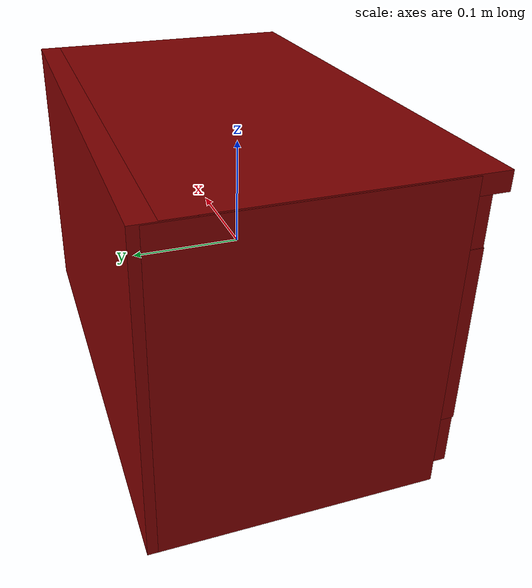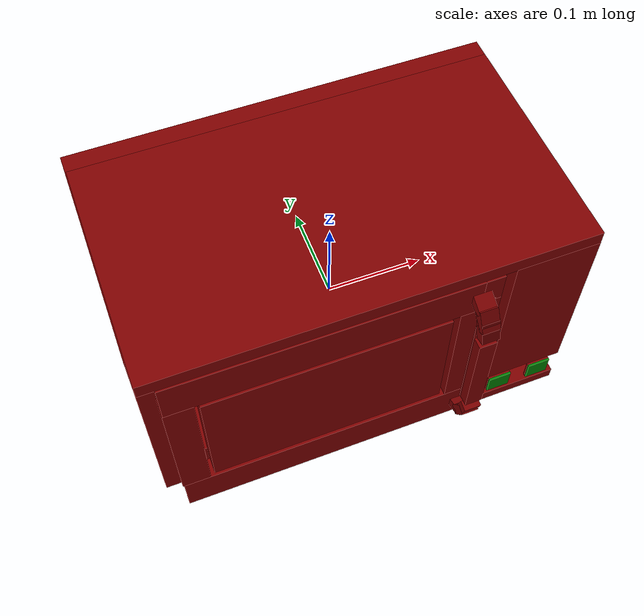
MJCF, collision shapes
<mujoco model="model">
  <compiler angle="radian"/>
  <asset>
    <mesh file="visuals/door.obj" name="door_vis"/>
    <mesh file="visuals/door_Clear.obj" name="door_Clear_vis"/>
    <mesh file="visuals/Body001.obj" name="Body001_vis"/>
    <mesh file="visuals/Button001.obj" name="Button001_vis"/>
    <mesh file="visuals/Button002.obj" name="Button002_vis"/>
    <mesh file="visuals/Disc001.obj" name="Disc001_vis"/>
    <texture file="visuals/T_BC001.png" name="Body001_material" type="2d"/>
    <material name="Body001_material" rgba="1 1 1 1.0" texture="Body001_material" shininess="0.4472135901451111" specular="0.3103448502657381"/>
    <texture file="visuals/T_BC001.png" name="door_material" type="2d"/>
    <material name="door_material" rgba="1 1 1 1.0" texture="door_material" shininess="0.4472135901451111" specular="0.3103448502657381"/>
    <texture file="visuals/T_BC001.png" name="door_Clear_material" type="2d"/>
    <material name="door_Clear_material" rgba="1 1 1 0.8187407851219177" texture="door_Clear_material" shininess="0.5" specular="0.3103448502657381"/>
    <texture file="visuals/T_BC001.png" name="Button001_material" type="2d"/>
    <material name="Button001_material" rgba="1 1 1 1.0" texture="Button001_material" shininess="0.4472135901451111" specular="0.3103448502657381"/>
    <texture file="visuals/T_BC001.png" name="Button002_material" type="2d"/>
    <material name="Button002_material" rgba="1 1 1 1.0" texture="Button002_material" shininess="0.4472135901451111" specular="0.3103448502657381"/>
    <texture file="visuals/T_BC001.png" name="Disc001_material" type="2d"/>
    <material name="Disc001_material" rgba="1 1 1 1.0" texture="Disc001_material" shininess="0.4472135901451111" specular="0.3103448502657381"/>
  </asset>
  <default>
    <default class="visual">
      <geom conaffinity="0" contype="0" group="1" type="mesh"/>
    </default>
    <default class="collision">
      <geom group="0" rgba="0.5 0 0 0.5"/>
    </default>
    <default class="spawn">
      <geom group="0" rgba="1 1 1 0.5" contype="0" conaffinity="0"/>
      <site group="0" rgba="1 1 1 0.5"/>
    </default>
    <default class="region">
      <geom group="1" conaffinity="0" contype="0" rgba="0 1 0 0"/>
    </default>
  </default>
  <worldbody>
    <body>
      <body name="object">
        <geom class="collision" type="box" pos="0.149699 -0.119768 -0.093345" size="0.012576025910675526 0.0010291410144418478 0.011468940414488316" quat="1.0 0.0 0.0 0.0" name="start_button" rgba="0.0 0.5 0 0.5"/>
        <geom class="collision" type="box" pos="0.196370 -0.119768 -0.093330" size="0.012238393537700176 0.0009990474209189415 0.011656091548502445" quat="1.0 0.0 0.0 0.0" name="stop_button" rgba="0.0 0.5 0 0.5"/>
        <geom class="collision" type="box" pos="-0.046128 0.008792 -0.076449" size="0.08991196751594543 0.08991196751594543 0.003375768195837736" quat="1.0 0.0 0.0 0.0" name="tray" rgba="0 1 0 0.5"/>
        <geom mesh="Body001_vis" type="mesh" solimp="0.998 0.998 0.001" solref="0.001 1" density="100" friction="0.95 0.3 0.1" class="visual" material="Body001_material"/>
        <geom class="collision" type="box" pos="-0.206746 0.021166 0.006894" size="0.011933187022805214 0.11463572084903717 0.1347111165523529" quat="1.0 0.0 0.0 0.0"/>
        <geom class="collision" type="box" pos="-0.001776 0.019319 -0.133513" size="0.19735786318778992 0.11648261547088623 0.008951622992753983" quat="1.0 0.0 0.0 0.0"/>
        <geom class="collision" type="box" pos="0.210842 0.009028 -0.000708" size="0.007836669683456421 0.11559520661830902 0.12706592679023743" quat="1.0 0.0 0.0 0.0"/>
        <geom class="collision" type="box" pos="-0.000000 0.122263 0.007345" size="0.2186790555715561 0.021765995770692825 0.13511958718299866" quat="1.0 0.0 0.0 0.0"/>
        <geom class="collision" type="box" pos="0.000508 0.002930 0.134411" size="0.21817070245742798 0.12169364094734192 0.008054380305111408" quat="1.0 0.0 0.0 0.0"/>
        <geom class="collision" type="box" pos="0.115142 0.018612 -0.000307" size="0.014630835503339767 0.11026276648044586 0.1269126832485199" quat="1.0 0.0 0.0 0.0"/>
        <geom class="collision" type="box" pos="0.176526 -0.097944 -0.120465" size="0.04215288162231445 0.02107841894030571 0.006854276172816753" quat="1.0 0.0 0.0 0.0"/>
        <geom class="collision" type="box" pos="0.176526 0.003159 0.025569" size="0.04215288162231445 0.12218225002288818 0.10169417411088943" quat="1.0 0.0 0.0 0.0"/>
        <geom class="collision" type="box" pos="-0.001776 0.026455 -0.111004" size="0.19735786318778992 0.10934680700302124 0.020319350063800812" quat="1.0 0.0 0.0 0.0"/>
        <geom class="collision" type="box" pos="-0.040712 0.015904 0.117623" size="0.15461312234401703 0.10871889442205429 0.016914626583456993" quat="1.0 0.0 0.0 0.0"/>
        <body name="door">
          <joint axis="0.0 0.0 1.0" pos="-0.207611 -0.107606 -0.011140" limited="true" name="microjoint" range="-1.5707963267948966 0.0" type="hinge" damping="1" frictionloss="1" armature=".01" stiffness="0.05"/>
          <geom mesh="door_vis" type="mesh" solimp="0.998 0.998 0.001" solref="0.001 1" density="100" friction="0.95 0.3 0.1" class="visual" material="door_material"/>
          <geom class="collision" type="box" pos="-0.048388 -0.108384 0.098872" size="0.153357595205307 0.00980498269200325 0.023440396413207054" quat="1.0 0.0 0.0 0.0"/>
          <geom class="collision" type="box" pos="-0.048271 -0.108384 -0.105497" size="0.1527440845966339 0.00980498269200325 0.023440394550561905" quat="1.0 0.0 0.0 0.0"/>
          <geom class="collision" type="box" pos="0.094722 -0.108384 -0.002997" size="0.009746131487190723 0.00980498269200325 0.07887928187847137" quat="1.0 0.0 0.0 0.0"/>
          <geom class="collision" type="box" pos="-0.187877 -0.108384 -0.003118" size="0.014712302945554256 0.00980498269200325 0.07875912636518478" quat="1.0 0.0 0.0 0.0"/>
          <geom class="collision" type="box" pos="0.103261 -0.139593 -0.004311" size="0.009254427626729012 0.005718340165913105 0.05897502973675728" quat="1.0 0.0 0.0 0.0" name="door_handle"/>
          <geom class="collision" type="box" pos="0.102820 -0.121548 0.097984" size="0.009255077689886093 0.01179773174226284 0.005450263619422913" quat="5.967824989738801e-08 -7.539676261103523e-08 0.9728875160217285 0.23127888143062592"/>
          <geom class="collision" type="box" pos="0.114732 -0.108384 -0.012180" size="0.009746699593961239 0.00980498269200325 0.10331225395202637" quat="1.0 0.0 0.0 0.0"/>
          <geom class="collision" type="box" pos="0.114732 -0.108384 0.105070" size="0.009746729396283627 0.00980498269200325 0.017172861844301224" quat="1.0 0.0 0.0 0.0"/>
          <geom class="collision" type="box" pos="0.115460 -0.108384 -0.121672" size="0.010475290939211845 0.00980498269200325 0.006566065363585949" quat="1.0 0.0 0.0 0.0"/>
          <geom class="collision" type="box" pos="0.102820 -0.134842 -0.092947" size="0.009255077689886093 0.01179773174226284 0.005450263153761625" quat="-2.1250021120522433e-07 5.153807478563976e-07 -0.5028786063194275 -0.864357054233551"/>
          <geom class="collision" type="box" pos="0.102820 -0.121548 -0.103817" size="0.009255077689886093 0.01179773174226284 0.005450263619422913" quat="1.756554581788805e-07 1.0296741947968258e-07 -0.9728875160217285 0.23127888143062592"/>
          <geom class="collision" type="box" pos="0.102820 -0.134842 0.087114" size="0.009255077689886093 0.01179773174226284 0.005450263153761625" quat="-1.9651568550216325e-07 -4.879065613749844e-07 0.5028783679008484 -0.8643571734428406"/>
          <geom class="collision" type="box" pos="0.102820 -0.139441 0.075492" size="0.009255077689886093 0.01179773174226284 0.005450263619422913" quat="-2.5091560473811114e-07 -4.62289989400233e-07 0.5982407331466675 -0.8013164401054382"/>
          <geom class="collision" type="box" pos="0.102820 -0.139441 -0.081325" size="0.009255077689886093 0.01179773174226284 0.005450263619422913" quat="-2.699316610232927e-07 4.877610422227008e-07 -0.5982407927513123 -0.8013163805007935"/>
          <body name="door_Clear">
            <geom mesh="door_Clear_vis" type="mesh" solimp="0.998 0.998 0.001" solref="0.001 1" density="100" friction="0.95 0.3 0.1" class="visual" material="door_Clear_material"/>
            <geom class="collision" type="box" pos="-0.045181 -0.108384 -0.002142" size="0.12335885316133499 0.00980498269200325 0.07304345816373825" quat="1.0 0.0 0.0 0.0"/>
          </body>
        </body>
        <body name="Button001">
          <joint axis="0.0 1.0 0.0" pos="0.149936 -0.118494 -0.093365" limited="true" name="Button001_joint" range="0.0 0.0006" type="slide" damping="1" frictionloss="1" armature=".01" stiffness="0.05"/>
          <geom mesh="Button001_vis" type="mesh" solimp="0.998 0.998 0.001" solref="0.001 1" density="100" friction="0.95 0.3 0.1" class="visual" material="Button001_material"/>
          <geom class="collision" type="box" pos="0.149724 -0.117385 -0.093369" size="0.012712305411696434 0.0010485980892553926 0.01105471421033144" quat="1.0 0.0 0.0 0.0"/>
        </body>
        <body name="Button002">
          <joint axis="0.0 1.0 0.0" pos="0.196324 -0.118494 -0.093389" limited="true" name="Button002_joint" range="0.0 0.0006" type="slide" damping="1" frictionloss="1" armature=".01" stiffness="0.05"/>
          <geom mesh="Button002_vis" type="mesh" solimp="0.998 0.998 0.001" solref="0.001 1" density="100" friction="0.95 0.3 0.1" class="visual" material="Button002_material"/>
          <geom class="collision" type="box" pos="0.196241 -0.117495 -0.093417" size="0.012534885667264462 0.0011585723841562867 0.01163535751402378" quat="1.0 0.0 0.0 0.0"/>
        </body>
        <body name="Disc001">
          <joint axis="0.0 0.0 1.0" pos="-0.046287 0.008792 -0.083494" limited="false" name="Disc001_joint" range="0 360" type="hinge" damping="1" frictionloss="1" armature=".01" stiffness="0.05"/>
          <geom mesh="Disc001_vis" type="mesh" solimp="0.998 0.998 0.001" solref="0.001 1" density="100" friction="0.95 0.3 0.1" class="visual" material="Disc001_material"/>
          <geom class="collision" type="cylinder" pos="-0.046128 0.008357 -0.083452" size="0.08953051269054413 0.002008600626140833" quat="1.9470718370939721e-07 -1.0 -0.0 0.0"/>
        </body>
        <geom class="region" name="reg_main" type="box" pos="0.0 0.012632499999999998 0.0" size="0.218679 0.1313965 0.142465"/>
        <geom class="region" name="reg_int" type="box" pos="-0.0491715 0.003153999999999997 7.150000000000212e-05" size="0.1546415 0.09092900000000001 0.0964555"/>
      </body>
    </body>
  </worldbody>
  <actuator>
    <motor name="microjoint_actuator" joint="microjoint" gear="3"/>
    <motor name="Button001_joint_actuator" joint="Button001_joint" gear="0.2"/>
    <motor name="Button002_joint_actuator" joint="Button002_joint" gear="0.2"/>
    <motor name="Disc001_joint_actuator" joint="Disc001_joint" gear="10"/>
  </actuator>
</mujoco>
